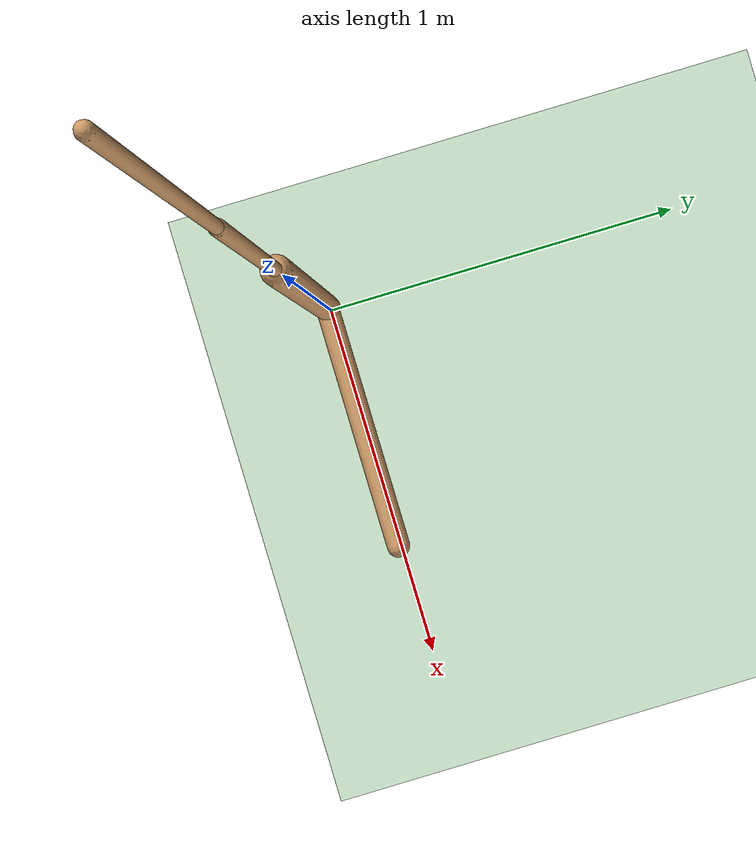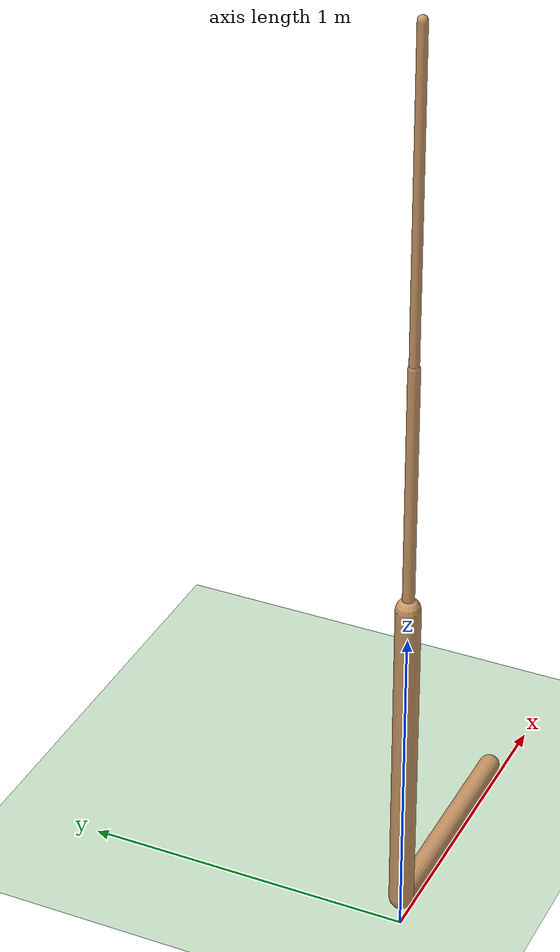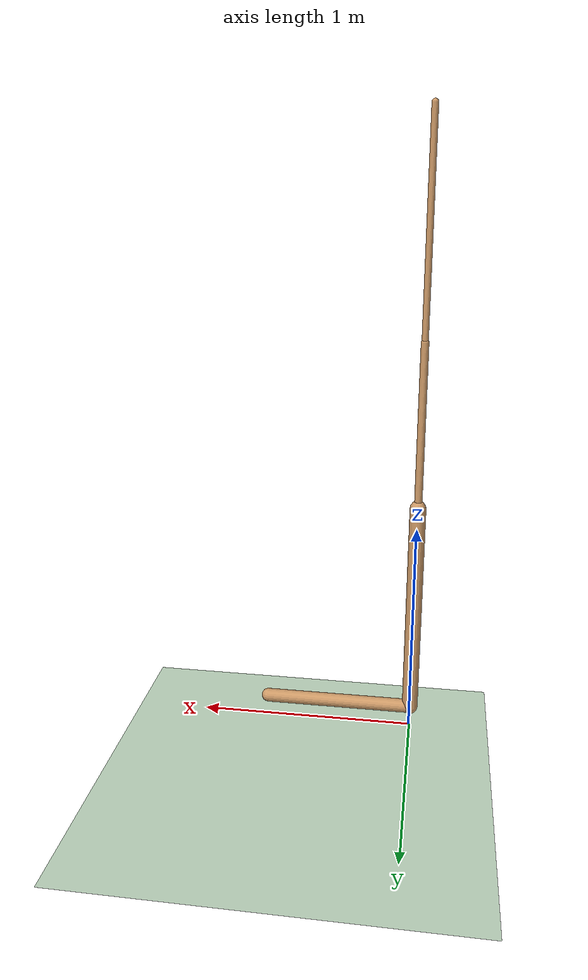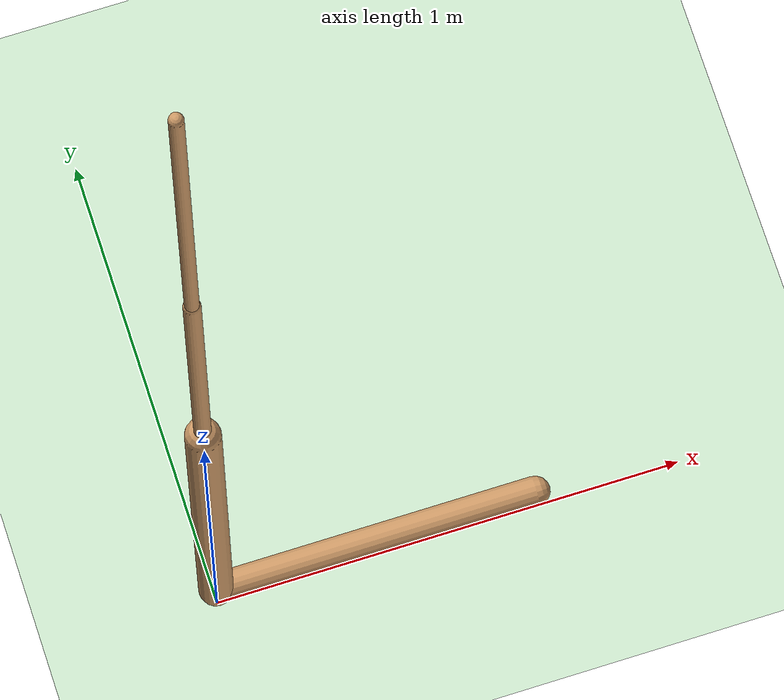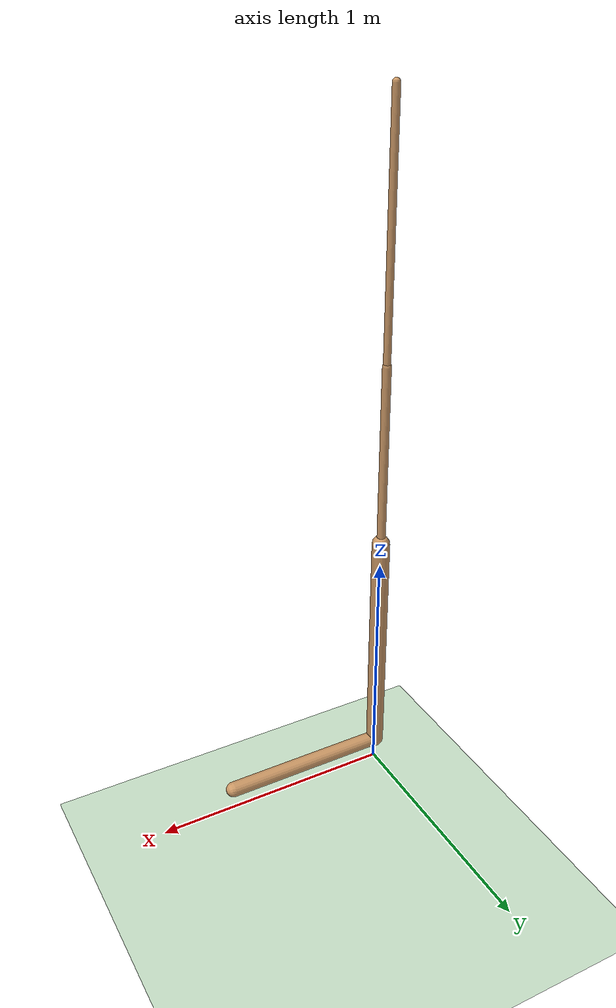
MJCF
<mujoco model="walker2d">
  <compiler angle="degree" inertiafromgeom="true" />
  <default>
    <joint armature="0.01" damping=".1" limited="true" />
    <geom conaffinity="0" condim="3" contype="1" density="1000" friction=".7 .1 .1" rgba="0.8 0.6 .4 1" />
  </default>
  <option integrator="RK4" timestep="0.002" />
  <worldbody>
    <light cutoff="100" diffuse="1 1 1" dir="-0 0 -1.3" directional="true" exponent="1" pos="0 0 1.3" specular=".1 .1 .1" />
    <geom conaffinity="1" condim="3" name="floor" pos="0 0 0" rgba="0.8 0.9 0.8 1" size="40 40 40" type="plane" material="MatPlane" />
    <body name="torso" pos="0 0 2.3239452600479127">
      <camera name="track" mode="trackcom" pos="0 -5 -1.25" xyaxes="1 0 0 0 0 1" />
      <joint armature="0" axis="1 0 0" damping="0" limited="false" name="rootx" pos="0 0 -1.25" stiffness="0" type="slide" />
      <joint armature="0" axis="0 0 1" damping="0" limited="false" name="rootz" pos="0 0 -1.25" ref="1.25" stiffness="0" type="slide" />
      <joint armature="0" axis="0 1 0" damping="0" limited="false" name="rooty" pos="0 0 0" stiffness="0" type="hinge" />
      <geom friction="0.9" name="torso_geom" size="0.014182552695274353 0.4761112928390503" type="capsule" />
      <body name="thigh" pos="0 0 -0.4761112928390503">
        <joint axis="0 -1 0" name="thigh_joint" pos="0 0 0" range="-150 0" type="hinge" />
        <site name="torso_thigh_site" pos="0 0 0" size="0.01" type="sphere" rgba="1 0 0 0.5" />
        <geom friction="0.9" pos="0 0 -0.37278854846954346" name="thigh_geom" size="0.017251145094633102 0.37278854846954346" type="capsule" />
        <body name="leg" pos="0 0 -1.2467055320739746">
          <joint axis="0 -1 0" name="leg_joint" pos="0 0 0.5011284351348877" range="-150 0" type="hinge" />
          <site name="thigh_leg_site" pos="0 0 0.25" size="0.01" type="sphere" rgba="1 0 0 0.5" />
          <geom friction="0.9" name="leg_geom" size="0.03628503531217575 0.5011284351348877" type="capsule" />
          <body name="foot" pos="0.6873793005943298 0 -0.6011284351348877">
            <joint axis="0 -1 0" name="foot_joint" pos="-0.6873793005943298 0 0.1" range="-45 45" type="hinge" />
            <site name="leg_foot_site" pos="-0.2 0 0.1" size="0.01" type="sphere" rgba="1 0 0 0.5" />
            <geom friction="0.9" pos="-0.3436896502971649 0 0.1" quat="0.70710678118654757 0 -0.70710678118654746 0" name="foot_geom" size="0.03173205628991127 0.3436896502971649" type="capsule" />
          </body>
        </body>
      </body>

      <body name="thigh_left" pos="0 0 -0.4761112928390503">
        <joint axis="0 -1 0" name="thigh_left_joint" pos="0 0 0" range="-150 0" type="hinge" />
        <site name="torso_thigh_left_site" pos="0 0 0" size="0.01" type="sphere" rgba="1 0 0 0.5" />
        <geom friction="0.9" name="thigh_left_geom" rgba=".7 .3 .6 1" size="0.017251145094633102 0.37278854846954346" pos="0 0 -0.37278854846954346" type="capsule" />
        <body name="leg_left" pos="0 0 -1.2467055320739746">
          <joint axis="0 -1 0" name="leg_left_joint" pos="0 0 0.5011284351348877" range="-150 0" type="hinge" />
          <site name="thigh_leg_left_site" pos="0 0 0.25" size="0.01" type="sphere" rgba="1 0 0 0.5" />
          <geom friction="0.9" name="leg_left_geom" rgba=".7 .3 .6 1" size="0.03628503531217575 0.5011284351348877" type="capsule" />
          <body name="foot_left" pos="0.6873793005943298 0 -0.6011284351348877">
            <joint axis="0 -1 0" name="foot_left_joint" pos="-0.6873793005943298 0 0.1" range="-45 45" type="hinge" />
            <site name="leg_foot_left_site" pos="-0.2 0 0.1" size="0.01" type="sphere" rgba="1 0 0 0.5" />
            <geom friction="1.9" name="foot_left_geom" rgba=".7 .3 .6 1" size="0.03173205628991127 0.3436896502971649" pos="-0.3436896502971649 0 0.1" type="capsule" quat="0.70710678118654757 0 -0.70710678118654746 0" />
          </body>
        </body>
      </body>
    </body>
  </worldbody>
  <actuator>

    <motor ctrllimited="true" ctrlrange="-1.0 1.0" gear="19.723132487025072" joint="thigh_joint" />
    <motor ctrllimited="true" ctrlrange="-1.0 1.0" gear="164.9468989438953" joint="leg_joint" />
    <motor ctrllimited="true" ctrlrange="-1.0 1.0" gear="96.13031943888093" joint="foot_joint" />
    <motor ctrllimited="true" ctrlrange="-1.0 1.0" gear="19.723132487025072" joint="thigh_left_joint" />
    <motor ctrllimited="true" ctrlrange="-1.0 1.0" gear="164.9468989438953" joint="leg_left_joint" />
    <motor ctrllimited="true" ctrlrange="-1.0 1.0" gear="96.13031943888093" joint="foot_left_joint" />

  </actuator>
    <asset>
        <texture type="skybox" builtin="gradient" rgb1=".4 .5 .6" rgb2="0 0 0" width="100" height="100" />
        <texture builtin="flat" height="1278" mark="cross" markrgb="1 1 1" name="texgeom" random="0.01" rgb1="0.8 0.6 0.4" rgb2="0.8 0.6 0.4" type="cube" width="127" />
        <texture builtin="checker" height="100" name="texplane" rgb1="0 0 0" rgb2="0.8 0.8 0.8" type="2d" width="100" />
        <material name="MatPlane" reflectance="0.5" shininess="1" specular="1" texrepeat="60 60" texture="texplane" />
        <material name="geom" texture="texgeom" texuniform="true" />
    </asset>

  <sensor>
    <force site="torso_thigh_site" name="torso_thigh_sensor" />
    <force site="thigh_leg_site" name="thigh_leg_sensor" />
    <force site="leg_foot_site" name="leg_foot_sensor" />
    <force site="torso_thigh_left_site" name="torso_thigh_left_sensor" />
    <force site="thigh_leg_left_site" name="thigh_leg_left_sensor" />
    <force site="leg_foot_left_site" name="leg_foot_left_sensor" />
  </sensor>
</mujoco>
